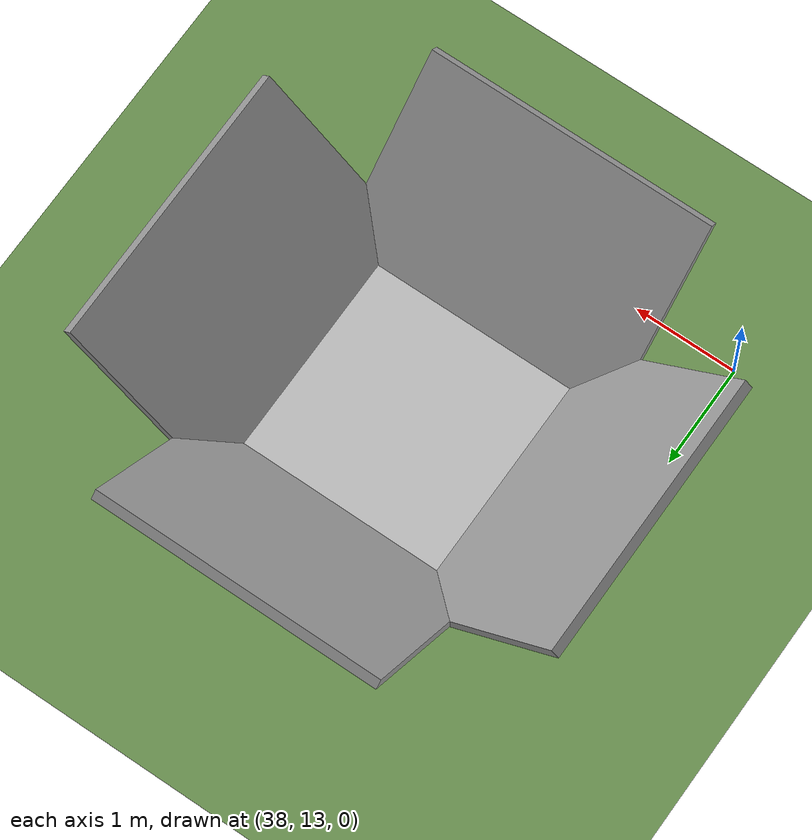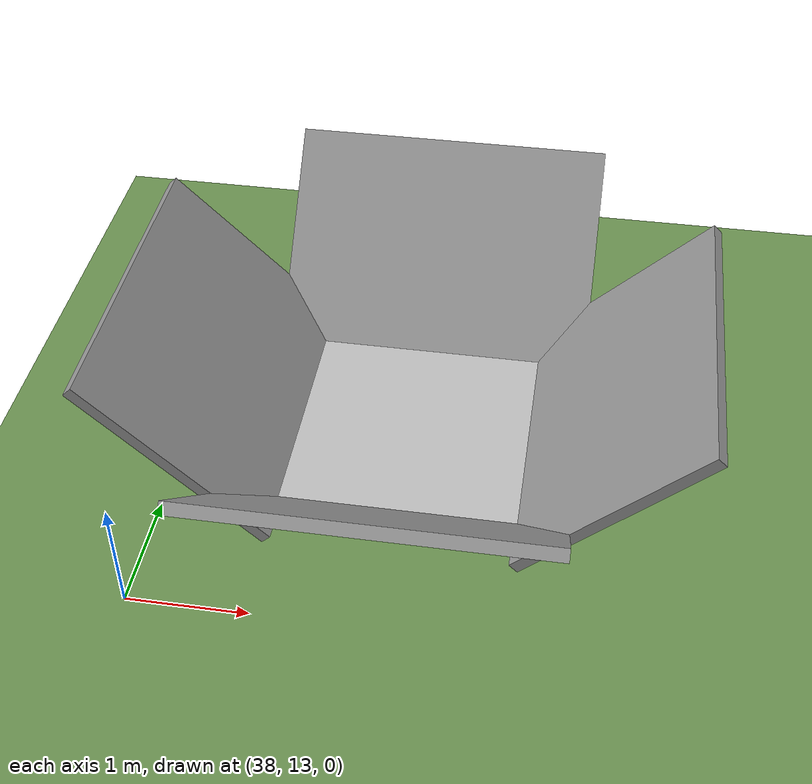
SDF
<sdf version="1.6">
 <world name="gokdogan_gorsel_servo">
  <spherical_coordinates>
   <surface_model>EARTH_WGS84</surface_model>
   <latitude_deg>37.413534</latitude_deg>
   <longitude_deg>-121.996561</longitude_deg>
   <elevation>1.3</elevation>
  </spherical_coordinates>
  <physics type="ode">
   <ode>
    <solver><type>quick</type><iters>100</iters><sor>1.0</sor></solver>
    <constraints>
     <cfm>0.0</cfm>
     <erp>0.2</erp>
     <contact_max_correcting_vel>0.1</contact_max_correcting_vel>
     <contact_surface_layer>0.0</contact_surface_layer>
    </constraints>
   </ode>
   <real_time_update_rate>400</real_time_update_rate>
   <max_step_size>0.0025</max_step_size>
  </physics>
  <scene>
   <ambient>0.7 0.7 0.7 1</ambient>
   <background>0.55 0.72 0.95 1</background>
   <shadows>false</shadows>
  </scene>
  <include><uri>model://sun</uri></include>
  <model name="ground_plane">
   <static>true</static>
   <link name="link">
    <collision name="collision">
     <geometry><plane><normal>0 0 1</normal><size>5000 5000</size></plane></geometry>
     <surface><friction><ode><mu>50</mu><mu2>50</mu2></ode></friction></surface>
    </collision>
    <visual name="grass">
     <cast_shadows>false</cast_shadows>
     <geometry><plane><normal>0 0 1</normal><size>5000 5000</size></plane></geometry>
     <material><ambient>0.35 0.5 0.28 1</ambient><diffuse>0.4 0.55 0.3 1</diffuse></material>
    </visual>
   </link>
  </model>
  <include><uri>model://qr_ground_target</uri><pose>40 15 0.2 0 0 0</pose></include>
 </world>
</sdf>

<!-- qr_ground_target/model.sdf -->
<sdf version="1.6">
  <model name="qr_ground_target">
    <static>true</static>
    <link name="target">

      <!-- QR plakası: zeminde düz, üst yüzü yukarı bakar -->
      <visual name="qr_face">
        <pose>0 0 0.03 0 0 0</pose>
        <geometry><box><size>2.0 2.0 0.05</size></box></geometry>
        <material>
          <script>
            <uri>model://qr_plate/materials/scripts</uri>
            <uri>model://qr_plate/materials/textures</uri>
            <name>QrPlate/Diffuse</name>
          </script>
        </material>
      </visual>
      <collision name="qr_c">
        <pose>0 0 0.03 0 0 0</pose>
        <geometry><box><size>2.0 2.0 0.05</size></box></geometry>
      </collision>

      <!-- 4 engel: her biri 45° dışa doğru eğik, QR'ın kenarında (huni ağzı yukarı) -->
      <visual name="wall_yp">
        <pose>0 1.7 0.7 -0.785 0 0</pose>
        <geometry><box><size>2.8 0.1 2.0</size></box></geometry>
        <material><ambient>0.55 0.55 0.55 1</ambient><diffuse>0.6 0.6 0.6 1</diffuse></material>
      </visual>
      <visual name="wall_yn">
        <pose>0 -1.7 0.7 0.785 0 0</pose>
        <geometry><box><size>2.8 0.1 2.0</size></box></geometry>
        <material><ambient>0.55 0.55 0.55 1</ambient><diffuse>0.6 0.6 0.6 1</diffuse></material>
      </visual>
      <visual name="wall_xp">
        <pose>1.7 0 0.7 0 0.785 0</pose>
        <geometry><box><size>0.1 2.8 2.0</size></box></geometry>
        <material><ambient>0.55 0.55 0.55 1</ambient><diffuse>0.6 0.6 0.6 1</diffuse></material>
      </visual>
      <visual name="wall_xn">
        <pose>-1.7 0 0.7 0 -0.785 0</pose>
        <geometry><box><size>0.1 2.8 2.0</size></box></geometry>
        <material><ambient>0.55 0.55 0.55 1</ambient><diffuse>0.6 0.6 0.6 1</diffuse></material>
      </visual>

    </link>
  </model>
</sdf>
